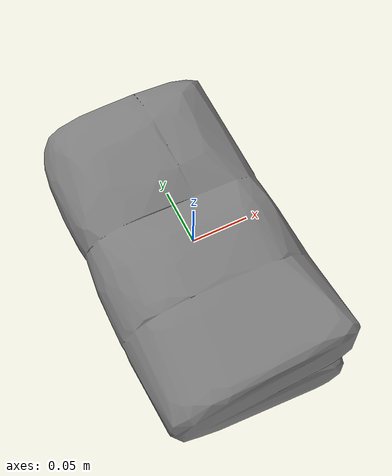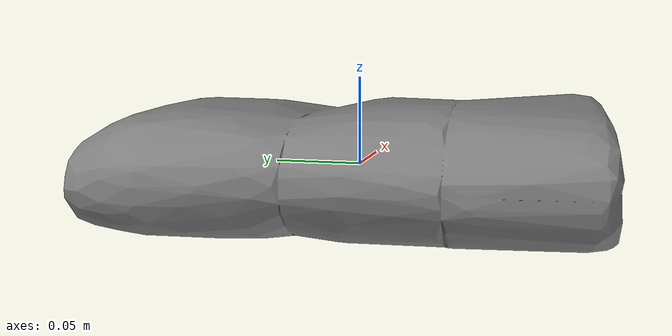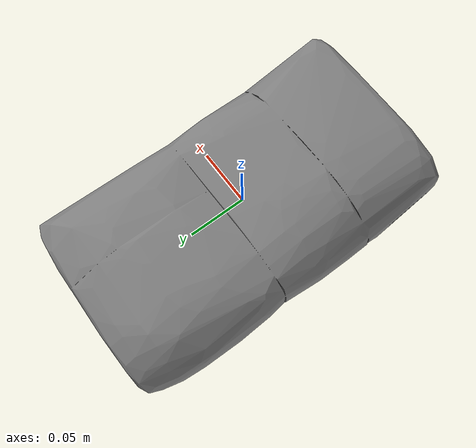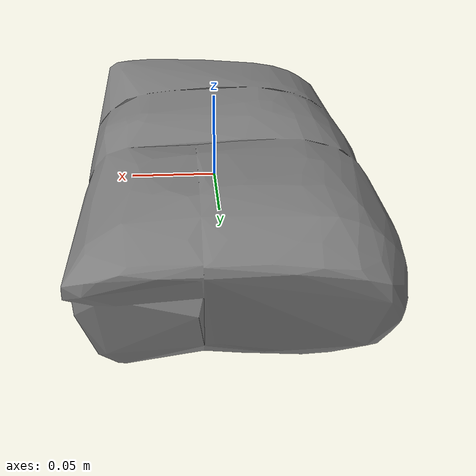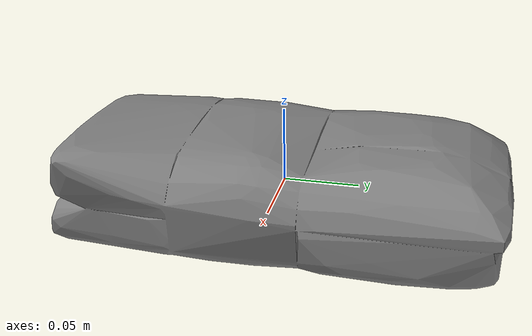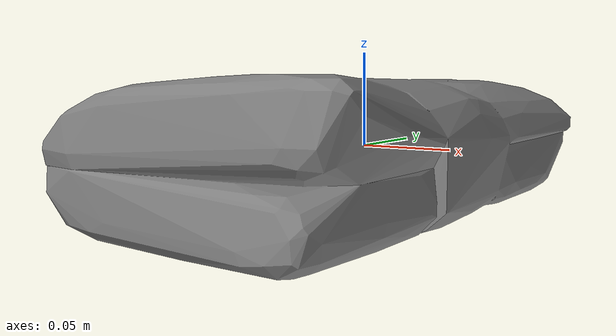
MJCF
<mujoco model="towel_Threshold_Performance_Bath_Sheet_Sandoval_Blue_33_x_63_M">
  <default>
    <default class="visual">
      <geom group="2" type="mesh" contype="0" conaffinity="0" />
    </default>
    <default class="collision">
      <geom group="3" type="mesh" />
    </default>
  </default>
  <asset>
    <mesh file="towel_Threshold_Performance_Bath_Sheet_Sandoval_Blue_33_x_63_M.stl" />
    <mesh file="towel_Threshold_Performance_Bath_Sheet_Sandoval_Blue_33_x_63_M_collision_0.stl" />
    <mesh file="towel_Threshold_Performance_Bath_Sheet_Sandoval_Blue_33_x_63_M_collision_1.stl" />
    <mesh file="towel_Threshold_Performance_Bath_Sheet_Sandoval_Blue_33_x_63_M_collision_2.stl" />
    <mesh file="towel_Threshold_Performance_Bath_Sheet_Sandoval_Blue_33_x_63_M_collision_3.stl" />
    <mesh file="towel_Threshold_Performance_Bath_Sheet_Sandoval_Blue_33_x_63_M_collision_4.stl" />
    <mesh file="towel_Threshold_Performance_Bath_Sheet_Sandoval_Blue_33_x_63_M_collision_5.stl" />
    <mesh file="towel_Threshold_Performance_Bath_Sheet_Sandoval_Blue_33_x_63_M_collision_6.stl" />
    <mesh file="towel_Threshold_Performance_Bath_Sheet_Sandoval_Blue_33_x_63_M_collision_7.stl" />
    <mesh file="towel_Threshold_Performance_Bath_Sheet_Sandoval_Blue_33_x_63_M_collision_8.stl" />
    <mesh file="towel_Threshold_Performance_Bath_Sheet_Sandoval_Blue_33_x_63_M_collision_9.stl" />
    <mesh file="towel_Threshold_Performance_Bath_Sheet_Sandoval_Blue_33_x_63_M_collision_10.stl" />
    <mesh file="towel_Threshold_Performance_Bath_Sheet_Sandoval_Blue_33_x_63_M_collision_11.stl" />
    <mesh file="towel_Threshold_Performance_Bath_Sheet_Sandoval_Blue_33_x_63_M_collision_12.stl" />
    <mesh file="towel_Threshold_Performance_Bath_Sheet_Sandoval_Blue_33_x_63_M_collision_13.stl" />
    <mesh file="towel_Threshold_Performance_Bath_Sheet_Sandoval_Blue_33_x_63_M_collision_14.stl" />
    <mesh file="towel_Threshold_Performance_Bath_Sheet_Sandoval_Blue_33_x_63_M_collision_15.stl" />
  </asset>
  <worldbody>
    <body name="towel_Threshold_Performance_Bath_Sheet_Sandoval_Blue_33_x_63_M">
      <geom mesh="towel_Threshold_Performance_Bath_Sheet_Sandoval_Blue_33_x_63_M" class="visual" />
      <geom mesh="towel_Threshold_Performance_Bath_Sheet_Sandoval_Blue_33_x_63_M_collision_0" class="collision" />
      <geom mesh="towel_Threshold_Performance_Bath_Sheet_Sandoval_Blue_33_x_63_M_collision_1" class="collision" />
      <geom mesh="towel_Threshold_Performance_Bath_Sheet_Sandoval_Blue_33_x_63_M_collision_2" class="collision" />
      <geom mesh="towel_Threshold_Performance_Bath_Sheet_Sandoval_Blue_33_x_63_M_collision_3" class="collision" />
      <geom mesh="towel_Threshold_Performance_Bath_Sheet_Sandoval_Blue_33_x_63_M_collision_4" class="collision" />
      <geom mesh="towel_Threshold_Performance_Bath_Sheet_Sandoval_Blue_33_x_63_M_collision_5" class="collision" />
      <geom mesh="towel_Threshold_Performance_Bath_Sheet_Sandoval_Blue_33_x_63_M_collision_6" class="collision" />
      <geom mesh="towel_Threshold_Performance_Bath_Sheet_Sandoval_Blue_33_x_63_M_collision_7" class="collision" />
      <geom mesh="towel_Threshold_Performance_Bath_Sheet_Sandoval_Blue_33_x_63_M_collision_8" class="collision" />
      <geom mesh="towel_Threshold_Performance_Bath_Sheet_Sandoval_Blue_33_x_63_M_collision_9" class="collision" />
      <geom mesh="towel_Threshold_Performance_Bath_Sheet_Sandoval_Blue_33_x_63_M_collision_10" class="collision" />
      <geom mesh="towel_Threshold_Performance_Bath_Sheet_Sandoval_Blue_33_x_63_M_collision_11" class="collision" />
      <geom mesh="towel_Threshold_Performance_Bath_Sheet_Sandoval_Blue_33_x_63_M_collision_12" class="collision" />
      <geom mesh="towel_Threshold_Performance_Bath_Sheet_Sandoval_Blue_33_x_63_M_collision_13" class="collision" />
      <geom mesh="towel_Threshold_Performance_Bath_Sheet_Sandoval_Blue_33_x_63_M_collision_14" class="collision" />
      <geom mesh="towel_Threshold_Performance_Bath_Sheet_Sandoval_Blue_33_x_63_M_collision_15" class="collision" />
    </body>
  </worldbody>
</mujoco>
